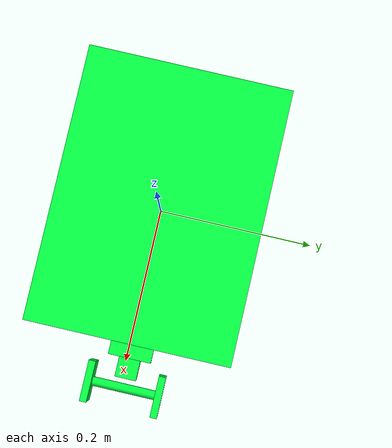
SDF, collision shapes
<?xml version="1.0"?>
<sdf version="1.9">
  <model name="gamantaray_rov_github_blue_gripper">
    <static>true</static>
    <self_collide>false</self_collide>

    <link name="base_link">
      <pose>0 0 0 0 0 0</pose>
      <inertial>
        <mass>13.0</mass>
        <pose>0 0 0.011 0 0 0</pose>
        <inertia>
          <ixx>0.099</ixx>
          <ixy>0</ixy>
          <ixz>0</ixz>
          <iyy>0.178</iyy>
          <iyz>0</iyz>
          <izz>0.269</izz>
        </inertia>
      </inertial>

      <collision name="body_collision">
        <pose>0 0 0.012 0 0 0</pose>
        <geometry>
          <box>
            <size>0.35 0.26 0.14</size>
          </box>
        </geometry>
        <surface>
          <friction><ode><mu>1.1</mu><mu2>1.1</mu2><slip1>0.02</slip1><slip2>0.02</slip2></ode></friction>
          <bounce><restitution_coefficient>0.0</restitution_coefficient><threshold>1000</threshold></bounce>
          <contact><ode><kp>60000</kp><kd>150</kd><max_vel>0.05</max_vel><min_depth>0.001</min_depth></ode></contact>
        </surface>
      </collision>
      <collision name="gripper_saddle_collision">
        <pose>0.180 0 -0.080 0 0 0</pose>
        <geometry><box><size>0.040 0.060 0.012</size></box></geometry>
        <surface>
          <friction><ode><mu>1.4</mu><mu2>1.4</mu2><slip1>0.01</slip1><slip2>0.01</slip2></ode></friction>
          <bounce><restitution_coefficient>0.0</restitution_coefficient><threshold>1000</threshold></bounce>
          <contact><ode><kp>70000</kp><kd>170</kd><max_vel>0.04</max_vel><min_depth>0.001</min_depth></ode></contact>
        </surface>
      </collision>
      <collision name="gripper_neck_collision">
        <pose>0.210 0 -0.098 0 0 0</pose>
        <geometry><box><size>0.038 0.030 0.018</size></box></geometry>
        <surface>
          <friction><ode><mu>1.4</mu><mu2>1.4</mu2><slip1>0.01</slip1><slip2>0.01</slip2></ode></friction>
          <bounce><restitution_coefficient>0.0</restitution_coefficient><threshold>1000</threshold></bounce>
          <contact><ode><kp>70000</kp><kd>170</kd><max_vel>0.04</max_vel><min_depth>0.001</min_depth></ode></contact>
        </surface>
      </collision>
      <collision name="gripper_left_cheek_collision">
        <pose>0.244 0.050 -0.112 0 0 0</pose>
        <geometry><box><size>0.058 0.010 0.048</size></box></geometry>
        <surface>
          <friction><ode><mu>1.6</mu><mu2>1.6</mu2><slip1>0.008</slip1><slip2>0.008</slip2></ode></friction>
          <bounce><restitution_coefficient>0.0</restitution_coefficient><threshold>1000</threshold></bounce>
          <contact><ode><kp>80000</kp><kd>200</kd><max_vel>0.035</max_vel><min_depth>0.001</min_depth></ode></contact>
        </surface>
      </collision>
      <collision name="gripper_right_cheek_collision">
        <pose>0.244 -0.050 -0.112 0 0 0</pose>
        <geometry><box><size>0.058 0.010 0.048</size></box></geometry>
        <surface>
          <friction><ode><mu>1.6</mu><mu2>1.6</mu2><slip1>0.008</slip1><slip2>0.008</slip2></ode></friction>
          <bounce><restitution_coefficient>0.0</restitution_coefficient><threshold>1000</threshold></bounce>
          <contact><ode><kp>80000</kp><kd>200</kd><max_vel>0.035</max_vel><min_depth>0.001</min_depth></ode></contact>
        </surface>
      </collision>
      <collision name="gripper_cross_pin_collision">
        <pose>0.244 0 -0.112 1.5707963268 0 0</pose>
        <geometry><cylinder><radius>0.0065</radius><length>0.108</length></cylinder></geometry>
        <surface>
          <friction><ode><mu>1.3</mu><mu2>1.3</mu2><slip1>0.01</slip1><slip2>0.01</slip2></ode></friction>
          <bounce><restitution_coefficient>0.0</restitution_coefficient><threshold>1000</threshold></bounce>
          <contact><ode><kp>70000</kp><kd>170</kd><max_vel>0.04</max_vel><min_depth>0.001</min_depth></ode></contact>
        </surface>
      </collision>

      <visual name="body_collision_debug_visual">
        <pose>0 0 0.012 0 0 0</pose>
        <geometry><box><size>0.35 0.26 0.14</size></box></geometry>
        <material><ambient>0.00 1.00 0.25 0.0</ambient><diffuse>0.00 1.00 0.25 0.0</diffuse><specular>0.30 1.00 0.50 0.0</specular></material>
        <transparency>1.0</transparency>
      </visual>
      <visual name="gripper_saddle_collision_debug_visual">
        <pose>0.180 0 -0.080 0 0 0</pose>
        <geometry><box><size>0.040 0.060 0.012</size></box></geometry>
        <material><ambient>0.00 1.00 0.25 0.0</ambient><diffuse>0.00 1.00 0.25 0.0</diffuse><specular>0.30 1.00 0.50 0.0</specular></material>
        <transparency>1.0</transparency>
      </visual>
      <visual name="gripper_neck_collision_debug_visual">
        <pose>0.210 0 -0.098 0 0 0</pose>
        <geometry><box><size>0.038 0.030 0.018</size></box></geometry>
        <material><ambient>0.00 1.00 0.25 0.0</ambient><diffuse>0.00 1.00 0.25 0.0</diffuse><specular>0.30 1.00 0.50 0.0</specular></material>
        <transparency>1.0</transparency>
      </visual>
      <visual name="gripper_left_cheek_collision_debug_visual">
        <pose>0.244 0.050 -0.112 0 0 0</pose>
        <geometry><box><size>0.058 0.010 0.048</size></box></geometry>
        <material><ambient>0.00 1.00 0.25 0.0</ambient><diffuse>0.00 1.00 0.25 0.0</diffuse><specular>0.30 1.00 0.50 0.0</specular></material>
        <transparency>1.0</transparency>
      </visual>
      <visual name="gripper_right_cheek_collision_debug_visual">
        <pose>0.244 -0.050 -0.112 0 0 0</pose>
        <geometry><box><size>0.058 0.010 0.048</size></box></geometry>
        <material><ambient>0.00 1.00 0.25 0.0</ambient><diffuse>0.00 1.00 0.25 0.0</diffuse><specular>0.30 1.00 0.50 0.0</specular></material>
        <transparency>1.0</transparency>
      </visual>
      <visual name="gripper_cross_pin_collision_debug_visual">
        <pose>0.244 0 -0.112 1.5707963268 0 0</pose>
        <geometry><cylinder><radius>0.0065</radius><length>0.108</length></cylinder></geometry>
        <material><ambient>0.00 1.00 0.25 0.0</ambient><diffuse>0.00 1.00 0.25 0.0</diffuse><specular>0.30 1.00 0.50 0.0</specular></material>
        <transparency>1.0</transparency>
      </visual>

      <visual name="github_blue_body_visual">
        <pose>0 0 0 0 0 0</pose>
        <geometry>
          <mesh>
            <uri>model://gamantaray_rov_github_blue_gripper/meshes/bluerov2.dae</uri>
            <scale>0.0192 0.0192 0.0192</scale>
          </mesh>
        </geometry>
      </visual>

      <visual name="gripper_body_saddle">
        <pose>0.180 0 -0.080 0 0 0</pose>
        <geometry>
          <box>
            <size>0.040 0.060 0.012</size>
          </box>
        </geometry>
        <material>
          <ambient>0.010 0.012 0.014 1</ambient>
          <diffuse>0.020 0.024 0.028 1</diffuse>
          <specular>0.20 0.22 0.24 1</specular>
        </material>
      </visual>

      <visual name="gripper_center_neck">
        <pose>0.210 0 -0.098 0 0 0</pose>
        <geometry>
          <box>
            <size>0.038 0.030 0.018</size>
          </box>
        </geometry>
        <material>
          <ambient>0.014 0.016 0.018 1</ambient>
          <diffuse>0.028 0.032 0.036 1</diffuse>
          <specular>0.24 0.26 0.28 1</specular>
        </material>
      </visual>

      <visual name="gripper_actuator_housing">
        <pose>0.190 0 -0.066 0 0 0</pose>
        <geometry>
          <box>
            <size>0.032 0.038 0.014</size>
          </box>
        </geometry>
        <material>
          <ambient>0.006 0.008 0.009 1</ambient>
          <diffuse>0.014 0.018 0.020 1</diffuse>
          <specular>0.18 0.20 0.22 1</specular>
        </material>
      </visual>

      <visual name="gripper_integrated_upper_bridge">
        <pose>0.230 0 -0.076 0 0 0</pose>
        <geometry>
          <box>
            <size>0.062 0.052 0.010</size>
          </box>
        </geometry>
        <material>
          <ambient>0.008 0.010 0.012 1</ambient>
          <diffuse>0.018 0.021 0.024 1</diffuse>
          <specular>0.24 0.25 0.24 1</specular>
        </material>
      </visual>

      <visual name="gripper_left_side_rail">
        <pose>0.238 0.041 -0.092 0 0.18 0</pose>
        <geometry>
          <box>
            <size>0.080 0.006 0.010</size>
          </box>
        </geometry>
        <material>
          <ambient>0.010 0.012 0.014 1</ambient>
          <diffuse>0.024 0.027 0.030 1</diffuse>
          <specular>0.30 0.30 0.28 1</specular>
        </material>
      </visual>

      <visual name="gripper_right_side_rail">
        <pose>0.238 -0.041 -0.092 0 0.18 0</pose>
        <geometry>
          <box>
            <size>0.080 0.006 0.010</size>
          </box>
        </geometry>
        <material>
          <ambient>0.010 0.012 0.014 1</ambient>
          <diffuse>0.024 0.027 0.030 1</diffuse>
          <specular>0.30 0.30 0.28 1</specular>
        </material>
      </visual>

      <visual name="gripper_center_actuator_cylinder">
        <pose>0.228 0 -0.060 0 1.5707963268 0</pose>
        <geometry>
          <cylinder>
            <radius>0.006</radius>
            <length>0.060</length>
          </cylinder>
        </geometry>
        <material>
          <ambient>0.08 0.09 0.09 1</ambient>
          <diffuse>0.15 0.16 0.16 1</diffuse>
          <specular>0.55 0.55 0.50 1</specular>
        </material>
      </visual>

      <visual name="gripper_front_yoke_block">
        <pose>0.270 0 -0.106 0 0 0</pose>
        <geometry>
          <box>
            <size>0.016 0.048 0.016</size>
          </box>
        </geometry>
        <material>
          <ambient>0.012 0.014 0.016 1</ambient>
          <diffuse>0.026 0.029 0.032 1</diffuse>
          <specular>0.28 0.28 0.26 1</specular>
        </material>
      </visual>

      <visual name="gripper_left_pushrod">
        <pose>0.258 0.019 -0.080 0 0.42 0.14</pose>
        <geometry>
          <box>
            <size>0.042 0.004 0.005</size>
          </box>
        </geometry>
        <material>
          <ambient>0.12 0.12 0.12 1</ambient>
          <diffuse>0.24 0.24 0.23 1</diffuse>
          <specular>0.48 0.48 0.44 1</specular>
        </material>
      </visual>

      <visual name="gripper_right_pushrod">
        <pose>0.258 -0.019 -0.080 0 0.42 -0.14</pose>
        <geometry>
          <box>
            <size>0.042 0.004 0.005</size>
          </box>
        </geometry>
        <material>
          <ambient>0.12 0.12 0.12 1</ambient>
          <diffuse>0.24 0.24 0.23 1</diffuse>
          <specular>0.48 0.48 0.44 1</specular>
        </material>
      </visual>

      <visual name="gripper_left_cheek_plate">
        <pose>0.244 0.050 -0.112 0 0 0</pose>
        <geometry>
          <box>
            <size>0.058 0.010 0.048</size>
          </box>
        </geometry>
        <material>
          <ambient>0.010 0.011 0.012 1</ambient>
          <diffuse>0.022 0.024 0.026 1</diffuse>
          <specular>0.22 0.22 0.20 1</specular>
        </material>
      </visual>

      <visual name="gripper_right_cheek_plate">
        <pose>0.244 -0.050 -0.112 0 0 0</pose>
        <geometry>
          <box>
            <size>0.058 0.010 0.048</size>
          </box>
        </geometry>
        <material>
          <ambient>0.010 0.011 0.012 1</ambient>
          <diffuse>0.022 0.024 0.026 1</diffuse>
          <specular>0.22 0.22 0.20 1</specular>
        </material>
      </visual>

      <visual name="gripper_left_lower_brace">
        <pose>0.190 0.028 -0.098 0 0.36 0</pose>
        <geometry>
          <box>
            <size>0.052 0.006 0.008</size>
          </box>
        </geometry>
        <material>
          <ambient>0.012 0.014 0.015 1</ambient>
          <diffuse>0.024 0.026 0.028 1</diffuse>
        </material>
      </visual>

      <visual name="gripper_right_lower_brace">
        <pose>0.190 -0.028 -0.098 0 0.36 0</pose>
        <geometry>
          <box>
            <size>0.052 0.006 0.008</size>
          </box>
        </geometry>
        <material>
          <ambient>0.012 0.014 0.015 1</ambient>
          <diffuse>0.024 0.026 0.028 1</diffuse>
        </material>
      </visual>

      <visual name="gripper_cross_pin">
        <pose>0.244 0 -0.112 1.5707963268 0 0</pose>
        <geometry>
          <cylinder>
            <radius>0.0065</radius>
            <length>0.108</length>
          </cylinder>
        </geometry>
        <material>
          <ambient>0.12 0.13 0.13 1</ambient>
          <diffuse>0.20 0.21 0.20 1</diffuse>
          <specular>0.48 0.48 0.44 1</specular>
        </material>
      </visual>

      <visual name="gripper_left_pivot_cap">
        <pose>0.244 0.056 -0.112 1.5707963268 0 0</pose>
        <geometry>
          <cylinder>
            <radius>0.010</radius>
            <length>0.008</length>
          </cylinder>
        </geometry>
        <material>
          <ambient>0.08 0.09 0.09 1</ambient>
          <diffuse>0.15 0.16 0.16 1</diffuse>
          <specular>0.42 0.42 0.38 1</specular>
        </material>
      </visual>

      <visual name="gripper_right_pivot_cap">
        <pose>0.244 -0.056 -0.112 1.5707963268 0 0</pose>
        <geometry>
          <cylinder>
            <radius>0.010</radius>
            <length>0.008</length>
          </cylinder>
        </geometry>
        <material>
          <ambient>0.08 0.09 0.09 1</ambient>
          <diffuse>0.15 0.16 0.16 1</diffuse>
          <specular>0.42 0.42 0.38 1</specular>
        </material>
      </visual>

      <visual name="front_camera_glass">
        <pose>0.165 0 0.052 0 1.5707963268 0</pose>
        <geometry>
          <cylinder>
            <radius>0.020</radius>
            <length>0.012</length>
          </cylinder>
        </geometry>
        <material>
          <ambient>0.02 0.04 0.05 1</ambient>
          <diffuse>0.04 0.10 0.12 1</diffuse>
          <specular>0.80 0.95 1.00 1</specular>
        </material>
      </visual>

      <visual name="bottom_camera_housing">
        <pose>0.025 0 -0.095 0 0 0</pose>
        <geometry>
          <cylinder>
            <radius>0.016</radius>
            <length>0.018</length>
          </cylinder>
        </geometry>
        <material>
          <ambient>0.03 0.03 0.03 1</ambient>
          <diffuse>0.05 0.05 0.05 1</diffuse>
        </material>
      </visual>

      <sensor name="imu" type="imu">
        <always_on>true</always_on>
        <update_rate>100</update_rate>
        <topic>/rov/imu</topic>
      </sensor>

      <sensor name="wall_camera" type="camera">
        <pose>0.165 0 0.052 0 0 0</pose>
        <always_on>true</always_on>
        <update_rate>12</update_rate>
        <visualize>false</visualize>
        <topic>/rov/camera/wall/image</topic>
        <camera>
          <horizontal_fov>1.20</horizontal_fov>
          <image>
            <width>640</width>
            <height>480</height>
            <format>R8G8B8</format>
          </image>
          <clip>
            <near>0.02</near>
            <far>12.0</far>
          </clip>
        </camera>
      </sensor>

      <sensor name="bottom_camera" type="camera">
        <pose>0.025 0 -0.105 0 1.5708 0</pose>
        <always_on>true</always_on>
        <update_rate>12</update_rate>
        <visualize>false</visualize>
        <topic>/rov/camera/bottom/image</topic>
        <camera>
          <horizontal_fov>1.35</horizontal_fov>
          <image>
            <width>640</width>
            <height>480</height>
            <format>R8G8B8</format>
          </image>
          <clip>
            <near>0.02</near>
            <far>6.0</far>
          </clip>
        </camera>
      </sensor>
    </link>
  </model>
</sdf>
